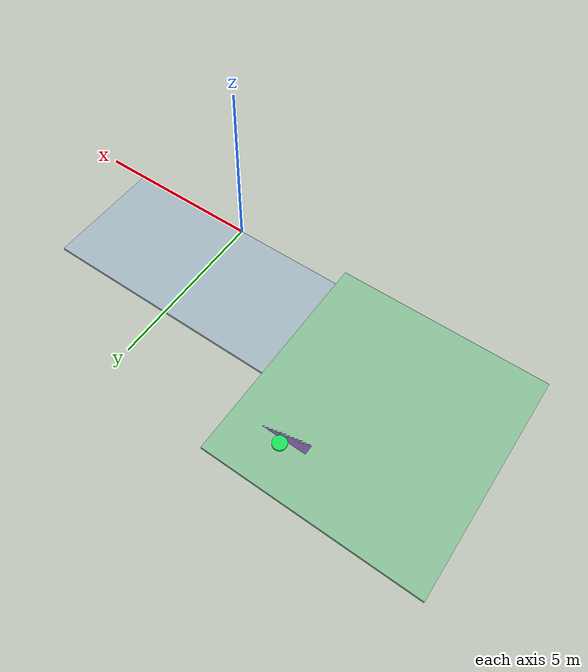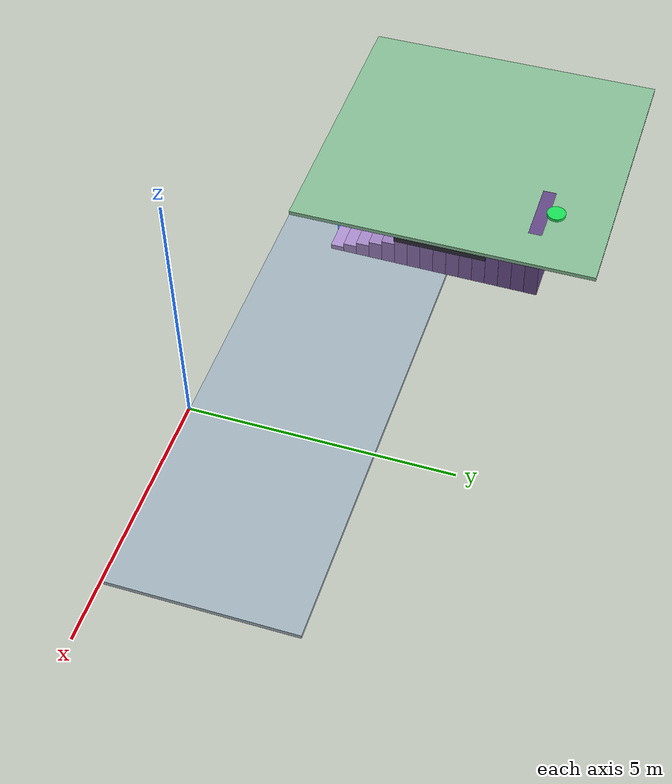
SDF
<sdf version="1.6">
 <world name="rslg_scripted_stair_transition_turtlebot3_burger">
  <gravity>0 0 -9.8</gravity>
  <atmosphere type="adiabatic"/>
  <plugin name="gazebo_ros_state" filename="libgazebo_ros_state.so"/>
  <include><uri>model://sun</uri></include>
  <model name="rslg_floor_1_flat_pid_platform_z0">
   <static>true</static>
   <link name="link">
    <collision name="collision">
     <geometry><box><size>10.200000 3.500000 0.080000</size></box></geometry>
     <surface><friction><ode><mu>1.2</mu><mu2>1.2</mu2></ode></friction></surface>
    </collision>
    <visual name="visual">
     <geometry><box><size>10.200000 3.500000 0.080000</size></box></geometry>
     <material><ambient>0.650 0.720 0.760 1.000</ambient><diffuse>0.650 0.720 0.760 1.000</diffuse></material>
    </visual>
   </link>
   <pose>-1.260000 1.750000 -0.040000 0 0 0</pose>
  </model>
  <model name="rslg_floor_2_flat_pid_platform_z1_6">
   <static>true</static>
   <link name="link">
    <collision name="collision">
     <geometry><box><size>5.600000 5.900000 0.080000</size></box></geometry>
     <surface><friction><ode><mu>1.2</mu><mu2>1.2</mu2></ode></friction></surface>
    </collision>
    <visual name="visual">
     <geometry><box><size>5.600000 5.900000 0.080000</size></box></geometry>
     <material><ambient>0.540 0.760 0.600 1.000</ambient><diffuse>0.540 0.760 0.600 1.000</diffuse></material>
    </visual>
   </link>
   <pose>-6.650000 3.550000 1.560000 0 0 0</pose>
  </model>
  <model name="rslg_stair_landing_entry_marker">
   <static>true</static>
   <link name="link">
    <visual name="visual">
     <geometry><cylinder><radius>0.180000</radius><length>0.060000</length></cylinder></geometry>
     <material><ambient>0.150 0.500 1.000 1.000</ambient><diffuse>0.150 0.500 1.000 1.000</diffuse></material>
    </visual>
   </link>
   <pose>-5.262000 1.254000 0.045000 0 0 0</pose>
  </model>
  <model name="rslg_stair_landing_exit_marker">
   <static>true</static>
   <link name="link">
    <visual name="visual">
     <geometry><cylinder><radius>0.180000</radius><length>0.060000</length></cylinder></geometry>
     <material><ambient>0.100 0.900 0.350 1.000</ambient><diffuse>0.100 0.900 0.350 1.000</diffuse></material>
    </visual>
   </link>
   <pose>-5.223000 5.437000 1.645000 0 0 0</pose>
  </model>
  <model name="rslg_visual_staircase_vt_1_centerline_e001">
   <static>true</static>
   <link name="step_01">
    <visual name="visual">
     <geometry><box><size>1.200000 0.260000 0.100000</size></box></geometry>
     <material><ambient>0.700 0.590 0.840 1.000</ambient><diffuse>0.700 0.590 0.840 1.000</diffuse></material>
    </visual>
   </link>
   <link name="step_02">
    <visual name="visual">
     <geometry><box><size>1.200000 0.260000 0.200000</size></box></geometry>
     <material><ambient>0.680 0.570 0.820 1.000</ambient><diffuse>0.680 0.570 0.820 1.000</diffuse></material>
    </visual>
    <pose>0.002438 0.261438 0.050000 0 0 0</pose>
   </link>
   <link name="step_03">
    <visual name="visual">
     <geometry><box><size>1.200000 0.260000 0.300000</size></box></geometry>
     <material><ambient>0.660 0.550 0.800 1.000</ambient><diffuse>0.660 0.550 0.800 1.000</diffuse></material>
    </visual>
    <pose>0.004875 0.522875 0.100000 0 0 0</pose>
   </link>
   <link name="step_04">
    <visual name="visual">
     <geometry><box><size>1.200000 0.260000 0.400000</size></box></geometry>
     <material><ambient>0.640 0.530 0.780 1.000</ambient><diffuse>0.640 0.530 0.780 1.000</diffuse></material>
    </visual>
    <pose>0.007313 0.784313 0.150000 0 0 0</pose>
   </link>
   <link name="step_05">
    <visual name="visual">
     <geometry><box><size>1.200000 0.260000 0.500000</size></box></geometry>
     <material><ambient>0.620 0.510 0.760 1.000</ambient><diffuse>0.620 0.510 0.760 1.000</diffuse></material>
    </visual>
    <pose>0.009750 1.045750 0.200000 0 0 0</pose>
   </link>
   <link name="step_06">
    <visual name="visual">
     <geometry><box><size>1.200000 0.260000 0.600000</size></box></geometry>
     <material><ambient>0.600 0.490 0.740 1.000</ambient><diffuse>0.600 0.490 0.740 1.000</diffuse></material>
    </visual>
    <pose>0.012188 1.307188 0.250000 0 0 0</pose>
   </link>
   <link name="step_07">
    <visual name="visual">
     <geometry><box><size>1.200000 0.260000 0.700000</size></box></geometry>
     <material><ambient>0.580 0.470 0.720 1.000</ambient><diffuse>0.580 0.470 0.720 1.000</diffuse></material>
    </visual>
    <pose>0.014625 1.568625 0.300000 0 0 0</pose>
   </link>
   <link name="step_08">
    <visual name="visual">
     <geometry><box><size>1.200000 0.260000 0.800000</size></box></geometry>
     <material><ambient>0.560 0.450 0.700 1.000</ambient><diffuse>0.560 0.450 0.700 1.000</diffuse></material>
    </visual>
    <pose>0.017063 1.830063 0.350000 0 0 0</pose>
   </link>
   <link name="step_09">
    <visual name="visual">
     <geometry><box><size>1.200000 0.260000 0.900000</size></box></geometry>
     <material><ambient>0.540 0.430 0.680 1.000</ambient><diffuse>0.540 0.430 0.680 1.000</diffuse></material>
    </visual>
    <pose>0.019500 2.091500 0.400000 0 0 0</pose>
   </link>
   <link name="step_10">
    <visual name="visual">
     <geometry><box><size>1.200000 0.260000 1.000000</size></box></geometry>
     <material><ambient>0.520 0.410 0.660 1.000</ambient><diffuse>0.520 0.410 0.660 1.000</diffuse></material>
    </visual>
    <pose>0.021938 2.352938 0.450000 0 0 0</pose>
   </link>
   <link name="step_11">
    <visual name="visual">
     <geometry><box><size>1.200000 0.260000 1.100000</size></box></geometry>
     <material><ambient>0.500 0.390 0.640 1.000</ambient><diffuse>0.500 0.390 0.640 1.000</diffuse></material>
    </visual>
    <pose>0.024375 2.614375 0.500000 0 0 0</pose>
   </link>
   <link name="step_12">
    <visual name="visual">
     <geometry><box><size>1.200000 0.260000 1.200000</size></box></geometry>
     <material><ambient>0.480 0.370 0.620 1.000</ambient><diffuse>0.480 0.370 0.620 1.000</diffuse></material>
    </visual>
    <pose>0.026813 2.875813 0.550000 0 0 0</pose>
   </link>
   <link name="step_13">
    <visual name="visual">
     <geometry><box><size>1.200000 0.260000 1.300000</size></box></geometry>
     <material><ambient>0.460 0.350 0.600 1.000</ambient><diffuse>0.460 0.350 0.600 1.000</diffuse></material>
    </visual>
    <pose>0.029250 3.137250 0.600000 0 0 0</pose>
   </link>
   <link name="step_14">
    <visual name="visual">
     <geometry><box><size>1.200000 0.260000 1.400000</size></box></geometry>
     <material><ambient>0.440 0.330 0.580 1.000</ambient><diffuse>0.440 0.330 0.580 1.000</diffuse></material>
    </visual>
    <pose>0.031688 3.398688 0.650000 0 0 0</pose>
   </link>
   <link name="step_15">
    <visual name="visual">
     <geometry><box><size>1.200000 0.260000 1.500000</size></box></geometry>
     <material><ambient>0.420 0.310 0.560 1.000</ambient><diffuse>0.420 0.310 0.560 1.000</diffuse></material>
    </visual>
    <pose>0.034125 3.660125 0.700000 0 0 0</pose>
   </link>
   <link name="step_16">
    <visual name="visual">
     <geometry><box><size>1.200000 0.260000 1.600000</size></box></geometry>
     <material><ambient>0.400 0.290 0.540 1.000</ambient><diffuse>0.400 0.290 0.540 1.000</diffuse></material>
    </visual>
    <pose>0.036563 3.921563 0.750000 0 0 0</pose>
   </link>
   <pose>-5.262000 1.254000 0.050000 0 0 0</pose>
  </model>
  <model name="rslg_stair_side_rail_left">
   <static>true</static>
   <link name="link">
    <visual name="visual">
     <geometry><box><size>0.060000 4.300000 0.080000</size></box></geometry>
     <material><ambient>0.120 0.140 0.180 1.000</ambient><diffuse>0.120 0.140 0.180 1.000</diffuse></material>
    </visual>
   </link>
   <pose>-4.600000 3.345000 1.150000 0 0 0</pose>
  </model>
  <model name="rslg_stair_side_rail_right">
   <static>true</static>
   <link name="link">
    <visual name="visual">
     <geometry><box><size>0.060000 4.300000 0.080000</size></box></geometry>
     <material><ambient>0.120 0.140 0.180 1.000</ambient><diffuse>0.120 0.140 0.180 1.000</diffuse></material>
    </visual>
   </link>
   <pose>-5.900000 3.345000 1.150000 0 0 0</pose>
  </model>
  <model name="rslg_scripted_transition_label_panel">
   <static>true</static>
   <link name="link">
    <visual name="visual">
     <geometry><box><size>1.800000 0.040000 0.400000</size></box></geometry>
     <material><ambient>0.180 0.180 0.220 1.000</ambient><diffuse>0.180 0.180 0.220 1.000</diffuse></material>
    </visual>
   </link>
   <pose>-4.250000 3.450000 1.220000 0 0 1.570796</pose>
  </model>
 </world>
</sdf>
